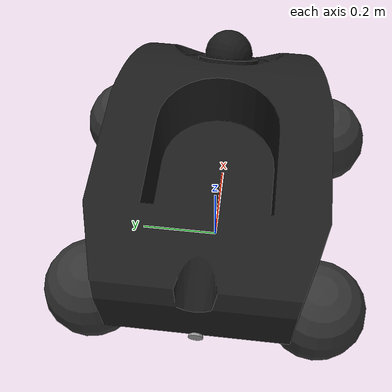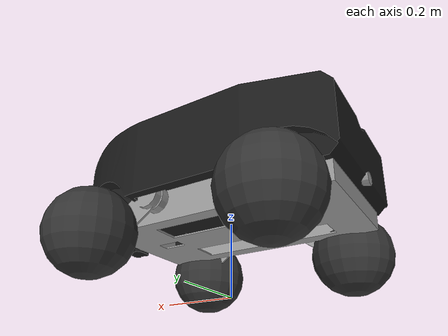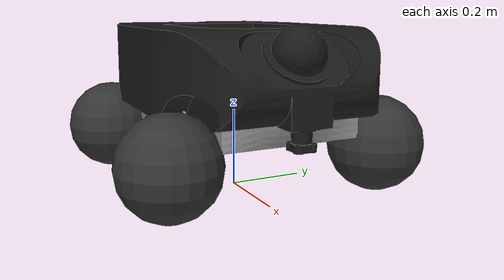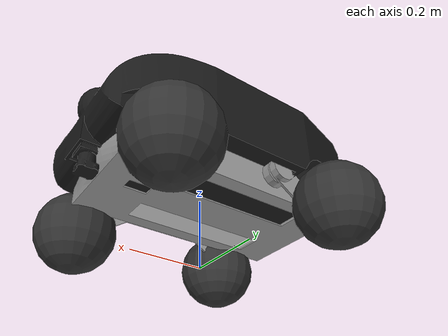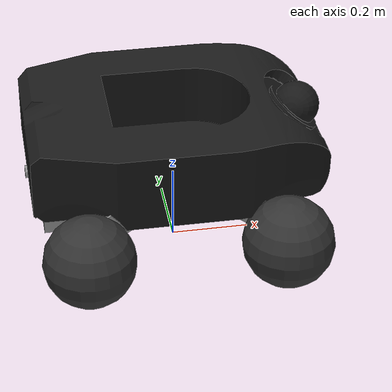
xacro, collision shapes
<?xml version="1.0"?>
<robot name="summit_xl" xmlns:xacro="http://www.ros.org/wiki/xacro">

	<!-- Imported elements -->

	<!-- First we import all posible elements defined in the urdf.xacro files. All these elements are defined as macro:xacros -->

	<!-- Import summit XL base elements -->
	<xacro:include filename="$(find summit_xl_description)/urdf/bases/summit_x_base.urdf.xacro" />

	<!-- Import summit XL wheels -->
	<xacro:include filename="$(find summit_xl_description)/urdf/wheels/omni_wheel.urdf.xacro" />

	<!-- Import all available sensors -->
	<xacro:include filename="$(find summit_xl_description)/urdf/sensors/all_sensors.urdf.xacro" />

	<!-- Global parameters -->

	<xacro:property name="PI" value="3.1415926535897931"/>

	<!-- Wheel parameters -->
	<xacro:property name="wheel_offset_x" value="0.249" />    <!-- x,y,z in translation from base_link to the center of the wheel -->
	<xacro:property name="wheel_offset_y" value="0.265" />
	<xacro:property name="wheel_offset_z" value="-0.092" />

	<!-- Flag to select the high or low quality model -->
	<xacro:property name="hq" value="true" />

	<!-- Robots Elements -->

	<!-- Here we create the robot elements using the xacro:macros imported at the beggining of this file -->

	<!-- Summit XL base -->
	<!-- this base already includes the Axis camera and Hokuyo laser sensors -->
	<xacro:summit_x_base name="summit_xl" publish_bf="true" />

	<!-- Gazebo ros control pluggins -->
	<xacro:ros_control/>

	<!-- Gazebo skid steering pluggins -->

	<!-- Gazebo omni steering plugin -->
	<xacro:omni_steering/>

	<!-- WHEELS -->

	<xacro:omni_wheel name="front_right" parent="base_link" reflect="false" hq="true">
		<origin xyz="${wheel_offset_x} -${wheel_offset_y} ${wheel_offset_z}" rpy="0 0 0"/>
	</xacro:omni_wheel>

	<xacro:omni_wheel name="front_left" parent="base_link" reflect="true" hq="true">
		<origin xyz="${wheel_offset_x} ${wheel_offset_y} ${wheel_offset_z}" rpy="0 0 0"/>
	</xacro:omni_wheel>

	<xacro:omni_wheel name="back_left" parent="base_link" reflect="false" hq="true">
		<origin xyz="-${wheel_offset_x} ${wheel_offset_y} ${wheel_offset_z}" rpy="0 0 0"/>
	</xacro:omni_wheel>

	<xacro:omni_wheel name="back_right" parent="base_link" reflect="true" hq="true">
		<origin xyz="-${wheel_offset_x} -${wheel_offset_y} ${wheel_offset_z}" rpy="0 0 0"/>
	</xacro:omni_wheel>

	<!-- SENSORS -->

	<xacro:sensor_imu name="imu" parent="rover_link">
		<origin xyz="-0.30 0.0 0.1" rpy="0 0 0"/>
	</xacro:sensor_imu>

</robot>

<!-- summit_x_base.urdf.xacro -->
<robot name="summit_xl" xmlns:xacro="http://www.ros.org/wiki/xacro">

	<xacro:include filename="$(find summit_xl_description)/urdf/bases/summit_x_base.gazebo.xacro" />

  <macro name="box_inertia" params="m x y z">
		<inertia  ixx="${m*(y*y+z*z)/12}" ixy = "0" ixz = "0"
			iyy="${m*(x*x+z*z)/12}" iyz = "0"
			izz="${m*(x*x+z*z)/12}"
		/>
	</macro>

	<xacro:macro name="summit_x_base" params="name publish_bf">

	<!-- Robot mechanical and motor parameters -->
	<xacro:property name="PI" value="3.1415926535897931"/>
	<xacro:property name="wheel_width" value="0.175" />

	<!-- BASE FOOTPRINT -->
	<xacro:if value="${publish_bf}">
		<link name="base_footprint">
			<visual>
				<origin xyz="0 0 0" rpy="0 0 0" />
				<geometry>
					<box size="0.001 0.001 0.001" />
				</geometry>
			</visual>
		</link>

		<joint name="base_footprint_joint" type="fixed">
			<origin xyz="0 0 ${2*wheel_radius}" rpy="0 0 0" /> <!-- ${wheel_radius} property must be defined inside wheel description -->
			<parent link="base_footprint"/>
			<child link="base_link" />
		</joint>
  </xacro:if>

  <!-- BASE_LINK -->
	<link name="base_link">
		<inertial>
			<mass value="25.0" />
			<origin xyz="0 0 0" />
			<inertia  ixx="1.391" ixy="0.004"  ixz="0.0"  iyy="6.853"  iyz="0.0"  izz="6.125" />
		</inertial>
		<visual>
			<origin xyz="0 0 0" rpy="0 0 0" />
			<geometry>
				<mesh filename="package://summit_xl_description/meshes/x_wam/chassis_xwam_down.stl"/>
			</geometry>
			<material name="summit_x_base_color">
				<color rgba="0.6 0.6 0.6 1"/>
			</material>
		</visual>
		<collision>
			<origin xyz="0 0 0" rpy="0 0 0 " />
				<geometry>
					<mesh filename="package://summit_xl_description/meshes/x_wam/chassis_xwam_down.stl"/>
				</geometry>
		</collision>
	</link>

  <!-- ROVER PART - UP SCISSOR MECH  -->
	<link name="rover_link">
		<inertial>
			<mass value="1.0" />
			<origin xyz="0 0 0" />
			<inertia  ixx="0.2185" ixy="0.0"  ixz="-0.001"  iyy="0.33677"  iyz="0.0"  izz="0.20511" />
		</inertial>
		<visual>
			<origin xyz="0 0 0" rpy="0 0 0" />
			<geometry>
				<mesh filename="package://summit_xl_description/meshes/x_wam/chassis_xwam_up.stl"/>
			</geometry>
			<material name="summit_x_rover_color">
				<color rgba="0.1 0.1 0.1 1"/>
			</material>
		</visual>
		<collision>
			<origin xyz="0 0 0" rpy="0 0 0 " />
			<geometry>
				<mesh filename="package://summit_xl_description/meshes/x_wam/chassis_xwam_up.stl"/>
			</geometry>
		</collision>
	</link>

  <joint name="scissor_prismatic_joint" type="prismatic">
    <parent link="base_link"/>
    <child link="rover_link"/>
    <limit effort="100000.0" velocity="1000.0" lower="0.0" upper="0.5"/> <!-- lower="0.1" upper="0.5" -->
    <origin rpy="0 0 0" xyz="0.261 0 -0.038"/>
    <axis xyz="0 0 1"/>
  </joint>

  <transmission name="joint_scissor_trans">
	 <type>transmission_interface/SimpleTransmission</type>
     <joint name="scissor_prismatic_joint" />
     <actuator name="scissor_motor">
		<hardwareInterface>EffortJointInterface</hardwareInterface>
		<mechanicalReduction>1</mechanicalReduction>
	 </actuator>
  </transmission>

	<!-- Axis camera -->
	<xacro:property name="ptz_joint_effort_limit" value="100.0" />
  <xacro:property name="ptz_joint_velocity_limit" value="100.0"/>
  <xacro:property name="ptz_joint_friction" value="0.1" />
  <xacro:property name="ptz_joint_damping" value="0.1" />
  <xacro:property name="ptz_mechanical_reduction" value="1.0" />

	<joint name="camera_joint" type="fixed">
			<axis xyz="0 1 0" />
			<origin xyz="0.0 0.0 0.13" rpy="0.0 ${PI/4} 0.0"/>
      <parent link="rover_link"/>
      <child link="camera_link"/>
  </joint>

	<link name="camera_link">
		<inertial>
			<origin xyz="0.03 0.0 -0.3" rpy="0 0 0"/>
			<mass value="0.1" />
			<origin xyz="0 0 0" rpy="0 0 0" />
			<inertia ixx="0.1" ixy="0" ixz="0" iyy="0.1" iyz="0" izz="0.1" />
		</inertial>
	</link>

  <joint name="joint_camera_pan" type="continuous">
     <axis xyz="0 0 1" />
     <origin xyz="0.0 0.0 0.1"/>
     <parent link="camera_link"/>
     <child link="camera_pan_link"/>
     <limit effort="${ptz_joint_effort_limit}" velocity="${ptz_joint_velocity_limit}" lower="-3.1416" upper="3.1416"/>
     <joint_properties damping="${ptz_joint_damping}" friction="{ptz_joint_friction}"/>
  </joint>

  <link name="camera_pan_link">
     <inertial>
       <mass value="0.1" />
       <origin xyz="0 0 0" rpy="0 0 0" />
       <inertia ixx="0.1" ixy="0" ixz="0" iyy="0.1" iyz="0" izz="0.1" />
    </inertial>
  </link>

  <transmission name="camera_pan_trans">
	 <type>transmission_interface/SimpleTransmission</type>
     <joint name="joint_camera_pan" />
     <actuator name="pan_motor">
		   <hardwareInterface>EffortJointInterface</hardwareInterface>
       <mechanicalReduction>${ptz_mechanical_reduction}</mechanicalReduction>
     </actuator>
  </transmission>

  <joint name="joint_camera_tilt" type="continuous">
     <axis xyz="0 1 0" />
     <origin xyz="0.0 0.0 0.0"/>
     <parent link="camera_pan_link"/>
     <child link="camera_tilt_link"/>
     <limit effort="${ptz_joint_effort_limit}" velocity="${ptz_joint_velocity_limit}" lower="-1.5708" upper="1.5708"/>
     <joint_properties damping="${ptz_joint_damping}" friction="{ptz_joint_friction}"/>
  </joint>

  <link name="camera_tilt_link">
     <inertial>
       <mass value="0.1" />
       <origin xyz="0 0 0" rpy="0 0 0" />
       <inertia ixx="0.1" ixy="0" ixz="0" iyy="0.1" iyz="0" izz="0.1" />
    </inertial>
  </link>

  <transmission name="camera_tilt_trans">
	 <type>transmission_interface/SimpleTransmission</type>
     <joint name="joint_camera_tilt" />
     <actuator name="tilt_motor">
			 <hardwareInterface>EffortJointInterface</hardwareInterface>
			 <mechanicalReduction>${ptz_mechanical_reduction}</mechanicalReduction>
     </actuator>
  </transmission>

	</xacro:macro>
</robot>

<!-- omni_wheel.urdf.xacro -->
<robot name="wheel" xmlns:xacro="http://www.ros.org/wiki/xacro">

  <xacro:property name="M_PI" value="3.1415926535897931" />
  <!-- Wheels -->
  <property name="wheel_radius" value="0.117" />
  <property name="wheel_height" value="0.12" />
  <property name="wheel_mass" value="6.5" /> <!-- in kg-->

  <macro name="cylinder_inertia" params="m r h">
    <inertia  ixx="${m*(3*r*r+h*h)/12}" ixy = "0" ixz = "0"
              iyy="${m*(3*r*r+h*h)/12}" iyz = "0"
              izz="${m*r*r/2}" />
  </macro>

  <xacro:macro name="omni_wheel" params="name parent *origin reflect hq">

    <joint name="joint_${name}_wheel" type="continuous">
      <parent link="${parent}"/>
      <child link="${name}_wheel"/>
      <insert_block name="origin" />
      <axis xyz="0 1 0" rpy="0 0 0" />
      <limit effort="100" velocity="100"/>
      <joint_properties damping="0.0" friction="0.0"/>
    </joint>

    <link name="${name}_wheel">
      <visual>
        <xacro:if value="${hq}">
          <origin xyz="0 0 0" rpy="0 0 0" />
          <xacro:if value="${reflect}">
            <geometry>
              <mesh filename="package://summit_xl_description/meshes/wheels/omni_wheel_1.dae" />
            </geometry>
          </xacro:if>
          <xacro:unless value="${reflect}">
            <geometry>
              <mesh filename="package://summit_xl_description/meshes/wheels/omni_wheel_2.dae" />
            </geometry>
		  </xacro:unless>
        </xacro:if>

        <xacro:unless value="${hq}">
          <origin xyz="0 0 0" rpy="0 0 0" />
          <geometry>
            <sphere radius="${wheel_radius}" />
          </geometry>
        </xacro:unless>

        <material name="darkgrey">
           <color rgba="0.2 0.2 0.2 1"/>
        </material>
      </visual>

      <collision>
		<origin xyz="0 0 0" rpy="0 0 0" />
        <geometry>
          <sphere radius="${wheel_radius}" />
        </geometry>
      </collision>

      <inertial>
        <mass value="${wheel_mass}" />
        <origin xyz="0 0 0" />
        <cylinder_inertia  m="${wheel_mass}" r="${wheel_radius}" h="${wheel_height}" />
      </inertial>
    </link>

    <!-- Transmission is important to link the joints and the controller (see summit_xl_control/config/summit_xl_control.yaml)-->
    <transmission name="${name}_wheel_joint_trans">
      <type>transmission_interface/SimpleTransmission</type>
      <joint name="joint_${name}_wheel" />
      <actuator name="${name}_wheel_joint_motor">
        <hardwareInterface>EffortJointInterface</hardwareInterface>
        <mechanicalReduction>1</mechanicalReduction>
      </actuator>
    </transmission>

    <gazebo reference="${name}_wheel">
		<mu1 value="5.0"/>
		<mu2 value="0.5"/>
		<kp value="10000000.0" />
		<kd value="1.0" />
		<fdir1 value="1 0 0"/>
      <material>Gazebo/Gray</material>
      <turnGravityOff>false</turnGravityOff>
    </gazebo>

  </xacro:macro>
</robot>

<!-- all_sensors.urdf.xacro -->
<robot name="all_sensors" xmlns:xacro="http://ros.org/wiki/xacro">

	<!-- This file unifies all sensors that can be used on simulation, defined as xacro:macros -->

  <!-- Axis p5512 -->
  <xacro:include filename="$(find summit_xl_description)/urdf/sensors/axis.urdf.xacro" />

	<!-- Fotonic -->
  <xacro:include filename="$(find summit_xl_description)/urdf/sensors/fotonic.urdf.xacro" />

	<!-- GPS -->
  <xacro:include filename="$(find summit_xl_description)/urdf/sensors/gps.urdf.xacro" />

	<!-- Hokuyo urg04lx -->
	<xacro:include filename="$(find summit_xl_description)/urdf/sensors/hokuyo_urg04lx.urdf.xacro" />

	<!-- Hokuyo utm30lx -->
  <xacro:include filename="$(find summit_xl_description)/urdf/sensors/hokuyo_utm30lx.urdf.xacro" />

  <!-- Imu -->
  <xacro:include filename="$(find summit_xl_description)/urdf/sensors/imu.urdf.xacro" />

  <!-- Kinect -->
  <xacro:include filename="$(find summit_xl_description)/urdf/sensors/kinect.urdf.xacro" />

  <!-- Asus Xtion PRO -->
  <xacro:include filename="$(find summit_xl_description)/urdf/sensors/asus_xtion_pro.urdf.xacro" />

</robot>

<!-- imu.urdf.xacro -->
<robot name="sensor_imu" xmlns:xacro="http://ros.org/wiki/xacro">

  <xacro:macro name="sensor_imu" params="name parent *origin">

	  <joint name="${name}_joint" type="fixed">
	      <axis xyz="1 0 0"/>
	      <!--origin xyz="0 0 0.2825"/-->
	      <insert_block name="origin"/>
	      <parent link="${parent}"/>
	      <child link="${name}_link"/>
	  </joint>

	  <link name="${name}_link">
	      <inertial>
	        <mass value="0.001"/>
	        <origin rpy="0 0 0" xyz="0 0 0"/>
	        <inertia ixx="0.0001" ixy="0" ixz="0" iyy="0.000001" iyz="0" izz="0.0001"/>
	      </inertial>
	      <visual>
	        <origin rpy="0 0 0" xyz="0 0 0"/>
	        <geometry>
	          <box size="0.001 0.001 0.001"/>
	        </geometry>
	      </visual>
	      <collision>
	        <origin rpy="0 0 0" xyz="0 0 0"/>
	        <geometry>
	          <box size=".001 .001 .001"/>
	        </geometry>
	      </collision>
	  </link>

	  <gazebo>
	    <plugin name="ros_imu" filename="libgazebo_ros_imu.so">
	       <topicName>imu_data</topicName>
				 <bodyName>imu_link</bodyName>
				 <serviceName>imu_service</serviceName>
	       <gaussianNoise>0.005</gaussianNoise>
	    </plugin>
	  </gazebo>

  </xacro:macro>

</robot>
